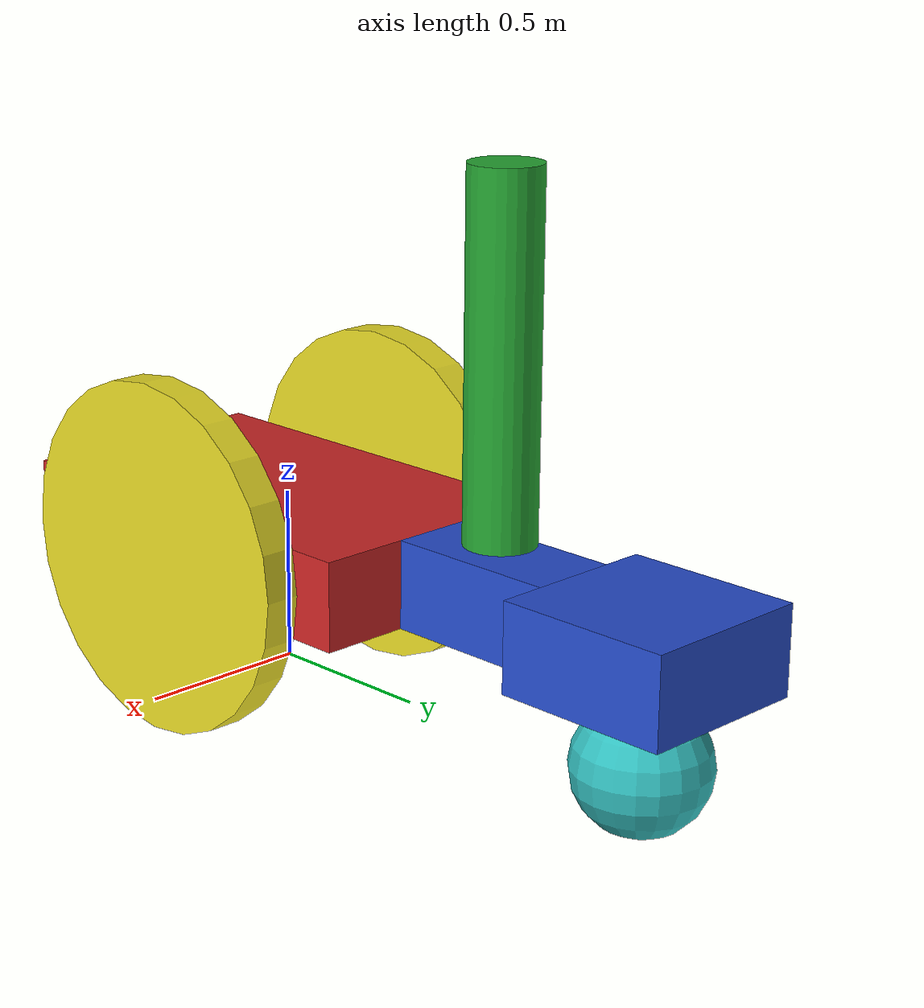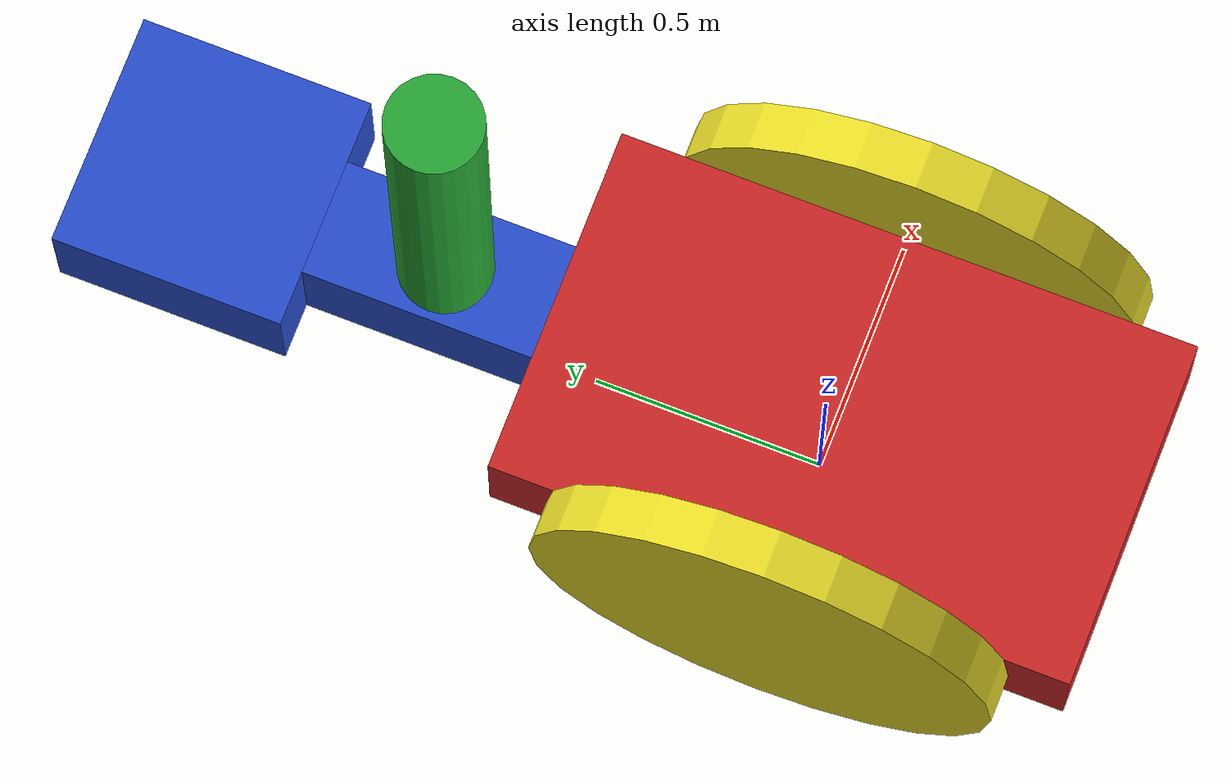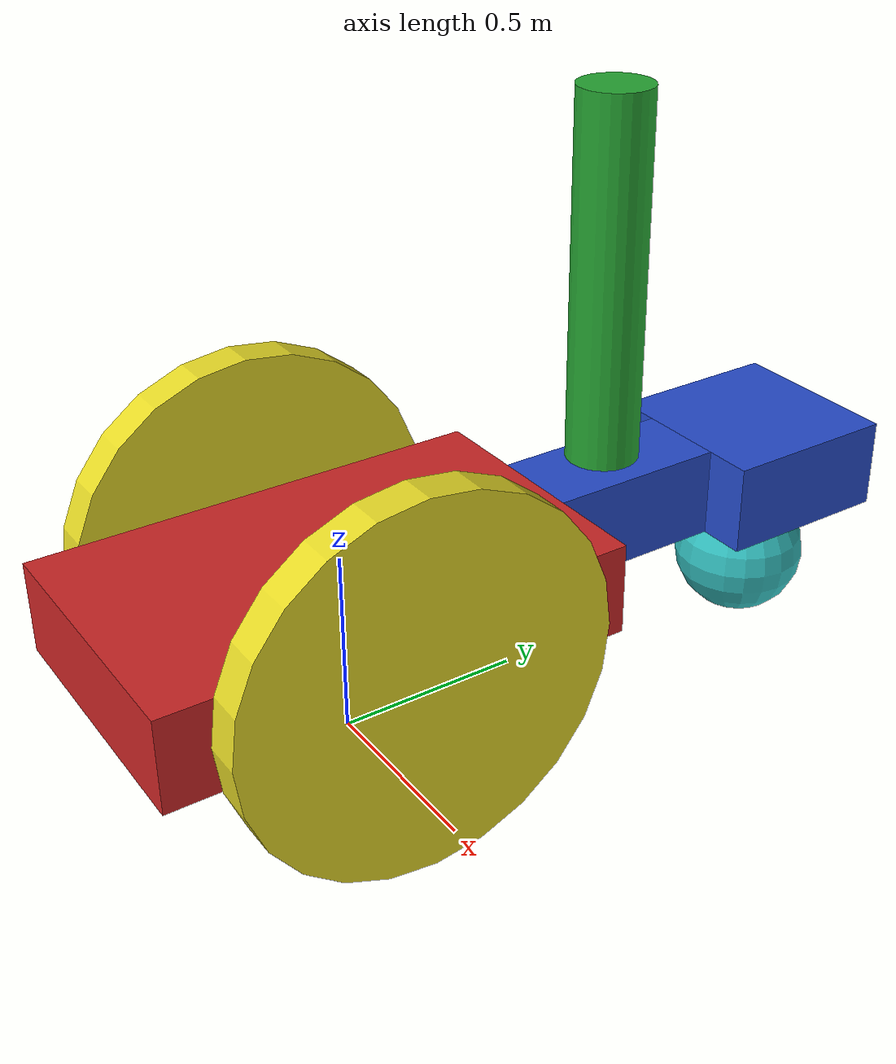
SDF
<?xml version='1.0'?>
<sdf version='1.6'>
  <model name='model'>
    <link name='link_1'>
      <inertial>
        <mass>1</mass>
        <inertia>
          <ixx>0.166667</ixx>
          <ixy>0</ixy>
          <ixz>0</ixz>
          <iyy>0.166667</iyy>
          <iyz>0</iyz>
          <izz>0.166667</izz>
        </inertia>
        <pose frame=''>0 0 0 0 -0 0</pose>
      </inertial>
      <pose frame=''>0.002679 -0.035833 0.401131 0 -0 0</pose>
      <gravity>1</gravity>
      <self_collide>0</self_collide>
      <kinematic>0</kinematic>
      <enable_wind>0</enable_wind>
      <visual name='visual'>
        <pose frame=''>0 0 0 0 -0 0</pose>
        <geometry>
          <box>
            <size>0.75 1.25 0.25</size>
          </box>
        </geometry>
        <material>
          <script>
            <uri>file://media/materials/scripts/gazebo.material</uri>
            <name>Gazebo/Red</name>
          </script>
        </material>
        <transparency>0</transparency>
        <cast_shadows>1</cast_shadows>
      </visual>
      <collision name='collision'>
        <laser_retro>0</laser_retro>
        <max_contacts>10</max_contacts>
        <pose frame=''>0 0 0 0 -0 0</pose>
        <geometry>
          <box>
            <size>0.75 1.25 0.25</size>
          </box>
        </geometry>
        <surface>
          <friction>
            <ode>
              <mu>1</mu>
              <mu2>1</mu2>
              <fdir1>0 0 0</fdir1>
              <slip1>0</slip1>
              <slip2>0</slip2>
            </ode>
            <torsional>
              <coefficient>1</coefficient>
              <patch_radius>0</patch_radius>
              <surface_radius>0</surface_radius>
              <use_patch_radius>1</use_patch_radius>
              <ode>
                <slip>0</slip>
              </ode>
            </torsional>
          </friction>
          <bounce>
            <restitution_coefficient>0</restitution_coefficient>
            <threshold>1e+06</threshold>
          </bounce>
          <contact>
            <collide_without_contact>0</collide_without_contact>
            <collide_without_contact_bitmask>1</collide_without_contact_bitmask>
            <collide_bitmask>1</collide_bitmask>
            <ode>
              <soft_cfm>0</soft_cfm>
              <soft_erp>0.2</soft_erp>
              <kp>1e+13</kp>
              <kd>1</kd>
              <max_vel>0.01</max_vel>
              <min_depth>0</min_depth>
            </ode>
            <bullet>
              <split_impulse>1</split_impulse>
              <split_impulse_penetration_threshold>-0.01</split_impulse_penetration_threshold>
              <soft_cfm>0</soft_cfm>
              <soft_erp>0.2</soft_erp>
              <kp>1e+13</kp>
              <kd>1</kd>
            </bullet>
          </contact>
        </surface>
      </collision>
    </link>
    <link name='link_2_clone'>
      <inertial>
        <mass>1</mass>
        <inertia>
          <ixx>0.145833</ixx>
          <ixy>0</ixy>
          <ixz>0</ixz>
          <iyy>0.145833</iyy>
          <iyz>0</iyz>
          <izz>0.125</izz>
        </inertia>
        <pose frame=''>0 0 0 0 -0 0</pose>
      </inertial>
      <pose frame=''>-0.422418 -0.035833 0.401131 1.5707 0 1.5707</pose>
      <gravity>1</gravity>
      <self_collide>0</self_collide>
      <kinematic>0</kinematic>
      <enable_wind>0</enable_wind>
      <visual name='visual'>
        <pose frame=''>0 0 0 0 -0 0</pose>
        <geometry>
          <cylinder>
            <radius>0.5</radius>
            <length>0.1</length>
          </cylinder>
        </geometry>
        <material>
          <script>
            <uri>file://media/materials/scripts/gazebo.material</uri>
            <name>Gazebo/Yellow</name>
          </script>
        </material>
        <transparency>0</transparency>
        <cast_shadows>1</cast_shadows>
      </visual>
      <collision name='collision'>
        <laser_retro>0</laser_retro>
        <max_contacts>10</max_contacts>
        <pose frame=''>0 0 0 0 -0 0</pose>
        <geometry>
          <cylinder>
            <radius>0.5</radius>
            <length>0.1</length>
          </cylinder>
        </geometry>
        <surface>
          <friction>
            <ode>
              <mu>1</mu>
              <mu2>1</mu2>
              <fdir1>0 0 0</fdir1>
              <slip1>0</slip1>
              <slip2>0</slip2>
            </ode>
            <torsional>
              <coefficient>1</coefficient>
              <patch_radius>0</patch_radius>
              <surface_radius>0</surface_radius>
              <use_patch_radius>1</use_patch_radius>
              <ode>
                <slip>0</slip>
              </ode>
            </torsional>
          </friction>
          <bounce>
            <restitution_coefficient>0</restitution_coefficient>
            <threshold>1e+06</threshold>
          </bounce>
          <contact>
            <collide_without_contact>0</collide_without_contact>
            <collide_without_contact_bitmask>1</collide_without_contact_bitmask>
            <collide_bitmask>1</collide_bitmask>
            <ode>
              <soft_cfm>0</soft_cfm>
              <soft_erp>0.2</soft_erp>
              <kp>1e+13</kp>
              <kd>1</kd>
              <max_vel>0.01</max_vel>
              <min_depth>0</min_depth>
            </ode>
            <bullet>
              <split_impulse>1</split_impulse>
              <split_impulse_penetration_threshold>-0.01</split_impulse_penetration_threshold>
              <soft_cfm>0</soft_cfm>
              <soft_erp>0.2</soft_erp>
              <kp>1e+13</kp>
              <kd>1</kd>
            </bullet>
          </contact>
        </surface>
      </collision>
    </link>
    <link name='link_2_clone_clone'>
      <inertial>
        <mass>1</mass>
        <inertia>
          <ixx>0.145833</ixx>
          <ixy>0</ixy>
          <ixz>0</ixz>
          <iyy>0.145833</iyy>
          <iyz>0</iyz>
          <izz>0.125</izz>
        </inertia>
        <pose frame=''>0 0 0 0 -0 0</pose>
      </inertial>
      <pose frame=''>0.427775 -0.035833 0.401131 1.5707 0 1.5707</pose>
      <gravity>1</gravity>
      <self_collide>0</self_collide>
      <kinematic>0</kinematic>
      <enable_wind>0</enable_wind>
      <visual name='visual'>
        <pose frame=''>0 0 0 0 -0 0</pose>
        <geometry>
          <cylinder>
            <radius>0.5</radius>
            <length>0.1</length>
          </cylinder>
        </geometry>
        <material>
          <script>
            <uri>file://media/materials/scripts/gazebo.material</uri>
            <name>Gazebo/Yellow</name>
          </script>
        </material>
        <transparency>0</transparency>
        <cast_shadows>1</cast_shadows>
      </visual>
      <collision name='collision'>
        <laser_retro>0</laser_retro>
        <max_contacts>10</max_contacts>
        <pose frame=''>0 0 0 0 -0 0</pose>
        <geometry>
          <cylinder>
            <radius>0.5</radius>
            <length>0.1</length>
          </cylinder>
        </geometry>
        <surface>
          <friction>
            <ode>
              <mu>1</mu>
              <mu2>1</mu2>
              <fdir1>0 0 0</fdir1>
              <slip1>0</slip1>
              <slip2>0</slip2>
            </ode>
            <torsional>
              <coefficient>1</coefficient>
              <patch_radius>0</patch_radius>
              <surface_radius>0</surface_radius>
              <use_patch_radius>1</use_patch_radius>
              <ode>
                <slip>0</slip>
              </ode>
            </torsional>
          </friction>
          <bounce>
            <restitution_coefficient>0</restitution_coefficient>
            <threshold>1e+06</threshold>
          </bounce>
          <contact>
            <collide_without_contact>0</collide_without_contact>
            <collide_without_contact_bitmask>1</collide_without_contact_bitmask>
            <collide_bitmask>1</collide_bitmask>
            <ode>
              <soft_cfm>0</soft_cfm>
              <soft_erp>0.2</soft_erp>
              <kp>1e+13</kp>
              <kd>1</kd>
              <max_vel>0.01</max_vel>
              <min_depth>0</min_depth>
            </ode>
            <bullet>
              <split_impulse>1</split_impulse>
              <split_impulse_penetration_threshold>-0.01</split_impulse_penetration_threshold>
              <soft_cfm>0</soft_cfm>
              <soft_erp>0.2</soft_erp>
              <kp>1e+13</kp>
              <kd>1</kd>
            </bullet>
          </contact>
        </surface>
      </collision>
    </link>
    <link name='link_3'>
      <inertial>
        <mass>1</mass>
        <inertia>
          <ixx>0.166667</ixx>
          <ixy>0</ixy>
          <ixz>0</ixz>
          <iyy>0.166667</iyy>
          <iyz>0</iyz>
          <izz>0.166667</izz>
        </inertia>
        <pose frame=''>0 0 0 0 -0 0</pose>
      </inertial>
      <pose frame=''>-0.004821 0.839167 0.401131 0 -0 0</pose>
      <gravity>1</gravity>
      <self_collide>0</self_collide>
      <kinematic>0</kinematic>
      <enable_wind>0</enable_wind>
      <visual name='visual'>
        <pose frame=''>0 0 0 0 -0 0</pose>
        <geometry>
          <box>
            <size>0.25 0.5 0.25</size>
          </box>
        </geometry>
        <material>
          <script>
            <uri>file://media/materials/scripts/gazebo.material</uri>
            <name>Gazebo/Blue</name>
          </script>
        </material>
        <transparency>0</transparency>
        <cast_shadows>1</cast_shadows>
      </visual>
      <collision name='collision'>
        <laser_retro>0</laser_retro>
        <max_contacts>10</max_contacts>
        <pose frame=''>0 0 0 0 -0 0</pose>
        <geometry>
          <box>
            <size>0.25 0.5 0.25</size>
          </box>
        </geometry>
        <surface>
          <friction>
            <ode>
              <mu>1</mu>
              <mu2>1</mu2>
              <fdir1>0 0 0</fdir1>
              <slip1>0</slip1>
              <slip2>0</slip2>
            </ode>
            <torsional>
              <coefficient>1</coefficient>
              <patch_radius>0</patch_radius>
              <surface_radius>0</surface_radius>
              <use_patch_radius>1</use_patch_radius>
              <ode>
                <slip>0</slip>
              </ode>
            </torsional>
          </friction>
          <bounce>
            <restitution_coefficient>0</restitution_coefficient>
            <threshold>1e+06</threshold>
          </bounce>
          <contact>
            <collide_without_contact>0</collide_without_contact>
            <collide_without_contact_bitmask>1</collide_without_contact_bitmask>
            <collide_bitmask>1</collide_bitmask>
            <ode>
              <soft_cfm>0</soft_cfm>
              <soft_erp>0.2</soft_erp>
              <kp>1e+13</kp>
              <kd>1</kd>
              <max_vel>0.01</max_vel>
              <min_depth>0</min_depth>
            </ode>
            <bullet>
              <split_impulse>1</split_impulse>
              <split_impulse_penetration_threshold>-0.01</split_impulse_penetration_threshold>
              <soft_cfm>0</soft_cfm>
              <soft_erp>0.2</soft_erp>
              <kp>1e+13</kp>
              <kd>1</kd>
            </bullet>
          </contact>
        </surface>
      </collision>
    </link>
    <link name='link_3_clone'>
      <inertial>
        <mass>1</mass>
        <inertia>
          <ixx>0.166667</ixx>
          <ixy>0</ixy>
          <ixz>0</ixz>
          <iyy>0.166667</iyy>
          <iyz>0</iyz>
          <izz>0.166667</izz>
        </inertia>
        <pose frame=''>0 0 0 0 -0 0</pose>
      </inertial>
      <pose frame=''>0.002679 1.33917 0.401131 0 -0 0</pose>
      <gravity>1</gravity>
      <self_collide>0</self_collide>
      <kinematic>0</kinematic>
      <enable_wind>0</enable_wind>
      <visual name='visual'>
        <pose frame=''>0 0 0 0 -0 0</pose>
        <geometry>
          <box>
            <size>0.5 0.5 0.25</size>
          </box>
        </geometry>
        <material>
          <script>
            <uri>file://media/materials/scripts/gazebo.material</uri>
            <name>Gazebo/Blue</name>
          </script>
        </material>
        <transparency>0</transparency>
        <cast_shadows>1</cast_shadows>
      </visual>
      <collision name='collision'>
        <laser_retro>0</laser_retro>
        <max_contacts>10</max_contacts>
        <pose frame=''>0 0 0 0 -0 0</pose>
        <geometry>
          <box>
            <size>0.5 0.5 0.25</size>
          </box>
        </geometry>
        <surface>
          <friction>
            <ode>
              <mu>1</mu>
              <mu2>1</mu2>
              <fdir1>0 0 0</fdir1>
              <slip1>0</slip1>
              <slip2>0</slip2>
            </ode>
            <torsional>
              <coefficient>1</coefficient>
              <patch_radius>0</patch_radius>
              <surface_radius>0</surface_radius>
              <use_patch_radius>1</use_patch_radius>
              <ode>
                <slip>0</slip>
              </ode>
            </torsional>
          </friction>
          <bounce>
            <restitution_coefficient>0</restitution_coefficient>
            <threshold>1e+06</threshold>
          </bounce>
          <contact>
            <collide_without_contact>0</collide_without_contact>
            <collide_without_contact_bitmask>1</collide_without_contact_bitmask>
            <collide_bitmask>1</collide_bitmask>
            <ode>
              <soft_cfm>0</soft_cfm>
              <soft_erp>0.2</soft_erp>
              <kp>1e+13</kp>
              <kd>1</kd>
              <max_vel>0.01</max_vel>
              <min_depth>0</min_depth>
            </ode>
            <bullet>
              <split_impulse>1</split_impulse>
              <split_impulse_penetration_threshold>-0.01</split_impulse_penetration_threshold>
              <soft_cfm>0</soft_cfm>
              <soft_erp>0.2</soft_erp>
              <kp>1e+13</kp>
              <kd>1</kd>
            </bullet>
          </contact>
        </surface>
      </collision>
    </link>
    <link name='link_4'>
      <inertial>
        <mass>1</mass>
        <inertia>
          <ixx>0.1</ixx>
          <ixy>0</ixy>
          <ixz>0</ixz>
          <iyy>0.1</iyy>
          <iyz>0</iyz>
          <izz>0.1</izz>
        </inertia>
        <pose frame=''>0 0 0 0 -0 0</pose>
      </inertial>
      <pose frame=''>0.002679 1.33917 0.088631 0 -0 0</pose>
      <gravity>1</gravity>
      <self_collide>0</self_collide>
      <kinematic>0</kinematic>
      <enable_wind>0</enable_wind>
      <visual name='visual'>
        <pose frame=''>0 0 0 0 -0 0</pose>
        <geometry>
          <sphere>
            <radius>0.1875</radius>
          </sphere>
        </geometry>
        <material>
          <script>
            <uri>file://media/materials/scripts/gazebo.material</uri>
            <name>Gazebo/Turquoise</name>
          </script>
        </material>
        <transparency>0</transparency>
        <cast_shadows>1</cast_shadows>
      </visual>
      <collision name='collision'>
        <laser_retro>0</laser_retro>
        <max_contacts>10</max_contacts>
        <pose frame=''>0 0 0 0 -0 0</pose>
        <geometry>
          <sphere>
            <radius>0.1875</radius>
          </sphere>
        </geometry>
        <surface>
          <friction>
            <ode>
              <mu>1</mu>
              <mu2>1</mu2>
              <fdir1>0 0 0</fdir1>
              <slip1>0</slip1>
              <slip2>0</slip2>
            </ode>
            <torsional>
              <coefficient>1</coefficient>
              <patch_radius>0</patch_radius>
              <surface_radius>0</surface_radius>
              <use_patch_radius>1</use_patch_radius>
              <ode>
                <slip>0</slip>
              </ode>
            </torsional>
          </friction>
          <bounce>
            <restitution_coefficient>0</restitution_coefficient>
            <threshold>1e+06</threshold>
          </bounce>
          <contact>
            <collide_without_contact>0</collide_without_contact>
            <collide_without_contact_bitmask>1</collide_without_contact_bitmask>
            <collide_bitmask>1</collide_bitmask>
            <ode>
              <soft_cfm>0</soft_cfm>
              <soft_erp>0.2</soft_erp>
              <kp>1e+13</kp>
              <kd>1</kd>
              <max_vel>0.01</max_vel>
              <min_depth>0</min_depth>
            </ode>
            <bullet>
              <split_impulse>1</split_impulse>
              <split_impulse_penetration_threshold>-0.01</split_impulse_penetration_threshold>
              <soft_cfm>0</soft_cfm>
              <soft_erp>0.2</soft_erp>
              <kp>1e+13</kp>
              <kd>1</kd>
            </bullet>
          </contact>
        </surface>
      </collision>
    </link>
    <link name='link_5'>
      <inertial>
        <mass>1</mass>
        <inertia>
          <ixx>0.145833</ixx>
          <ixy>0</ixy>
          <ixz>0</ixz>
          <iyy>0.145833</iyy>
          <iyz>0</iyz>
          <izz>0.125</izz>
        </inertia>
        <pose frame=''>0 0 0 0 -0 0</pose>
      </inertial>
      <pose frame=''>-0.017321 0.819167 1.04113 0 -0 0</pose>
      <gravity>1</gravity>
      <self_collide>0</self_collide>
      <kinematic>0</kinematic>
      <enable_wind>0</enable_wind>
      <visual name='visual'>
        <pose frame=''>0 0 0 0 -0 0</pose>
        <geometry>
          <cylinder>
            <radius>0.1</radius>
            <length>1</length>
          </cylinder>
        </geometry>
        <material>
          <script>
            <uri>file://media/materials/scripts/gazebo.material</uri>
            <name>Gazebo/Green</name>
          </script>
        </material>
        <transparency>0</transparency>
        <cast_shadows>1</cast_shadows>
      </visual>
      <collision name='collision'>
        <laser_retro>0</laser_retro>
        <max_contacts>10</max_contacts>
        <pose frame=''>0 0 0 0 -0 0</pose>
        <geometry>
          <cylinder>
            <radius>0.1</radius>
            <length>1</length>
          </cylinder>
        </geometry>
        <surface>
          <friction>
            <ode>
              <mu>1</mu>
              <mu2>1</mu2>
              <fdir1>0 0 0</fdir1>
              <slip1>0</slip1>
              <slip2>0</slip2>
            </ode>
            <torsional>
              <coefficient>1</coefficient>
              <patch_radius>0</patch_radius>
              <surface_radius>0</surface_radius>
              <use_patch_radius>1</use_patch_radius>
              <ode>
                <slip>0</slip>
              </ode>
            </torsional>
          </friction>
          <bounce>
            <restitution_coefficient>0</restitution_coefficient>
            <threshold>1e+06</threshold>
          </bounce>
          <contact>
            <collide_without_contact>0</collide_without_contact>
            <collide_without_contact_bitmask>1</collide_without_contact_bitmask>
            <collide_bitmask>1</collide_bitmask>
            <ode>
              <soft_cfm>0</soft_cfm>
              <soft_erp>0.2</soft_erp>
              <kp>1e+13</kp>
              <kd>1</kd>
              <max_vel>0.01</max_vel>
              <min_depth>0</min_depth>
            </ode>
            <bullet>
              <split_impulse>1</split_impulse>
              <split_impulse_penetration_threshold>-0.01</split_impulse_penetration_threshold>
              <soft_cfm>0</soft_cfm>
              <soft_erp>0.2</soft_erp>
              <kp>1e+13</kp>
              <kd>1</kd>
            </bullet>
          </contact>
        </surface>
      </collision>
    </link>
    <joint name='link_1_JOINT_0' type='revolute'>
      <parent>link_1</parent>
      <child>link_2_clone_clone</child>
      <pose frame=''>0 0 0 0 -0 0</pose>
      <axis>
        <xyz>0 0 1</xyz>
        <use_parent_model_frame>0</use_parent_model_frame>
        <limit>
          <lower>-1.79769e+308</lower>
          <upper>1.79769e+308</upper>
          <effort>-1</effort>
          <velocity>-1</velocity>
        </limit>
        <dynamics>
          <spring_reference>0</spring_reference>
          <spring_stiffness>0</spring_stiffness>
          <damping>0</damping>
        </dynamics>
      </axis>
      <physics>
        <ode>
          <limit>
            <cfm>0</cfm>
            <erp>0.2</erp>
          </limit>
          <suspension>
            <cfm>0</cfm>
            <erp>0.2</erp>
          </suspension>
        </ode>
      </physics>
    </joint>
    <joint name='link_1_JOINT_1' type='revolute'>
      <parent>link_1</parent>
      <child>link_2_clone</child>
      <pose frame=''>0 0 0 0 -0 0</pose>
      <axis>
        <xyz>0 0 1</xyz>
        <use_parent_model_frame>0</use_parent_model_frame>
        <limit>
          <lower>-1.79769e+308</lower>
          <upper>1.79769e+308</upper>
          <effort>-1</effort>
          <velocity>-1</velocity>
        </limit>
        <dynamics>
          <spring_reference>0</spring_reference>
          <spring_stiffness>0</spring_stiffness>
          <damping>0</damping>
        </dynamics>
      </axis>
      <physics>
        <ode>
          <limit>
            <cfm>0</cfm>
            <erp>0.2</erp>
          </limit>
          <suspension>
            <cfm>0</cfm>
            <erp>0.2</erp>
          </suspension>
        </ode>
      </physics>
    </joint>
    <joint name='link_1_JOINT_3' type='fixed'>
      <parent>link_1</parent>
      <child>link_3</child>
      <pose frame=''>0 0 0 0 -0 0</pose>
      <physics>
        <ode>
          <limit>
            <cfm>0</cfm>
            <erp>0.2</erp>
          </limit>
          <suspension>
            <cfm>0</cfm>
            <erp>0.2</erp>
          </suspension>
        </ode>
      </physics>
    </joint>
    <joint name='link_3_JOINT_4' type='fixed'>
      <parent>link_3</parent>
      <child>link_3_clone</child>
      <pose frame=''>0 0 0 0 -0 0</pose>
      <physics>
        <ode>
          <limit>
            <cfm>0</cfm>
            <erp>0.2</erp>
          </limit>
          <suspension>
            <cfm>0</cfm>
            <erp>0.2</erp>
          </suspension>
        </ode>
      </physics>
    </joint>
    <joint name='link_3_JOINT_6' type='fixed'>
      <parent>link_3</parent>
      <child>link_5</child>
      <pose frame=''>0 0 0 0 -0 0</pose>
      <physics>
        <ode>
          <limit>
            <cfm>0</cfm>
            <erp>0.2</erp>
          </limit>
          <suspension>
            <cfm>0</cfm>
            <erp>0.2</erp>
          </suspension>
        </ode>
      </physics>
    </joint>
    <joint name='link_3_clone_JOINT_5' type='ball'>
      <parent>link_3_clone</parent>
      <child>link_4</child>
      <pose frame=''>0 0 0 0 -0 0</pose>
      <physics>
        <ode>
          <limit>
            <cfm>0</cfm>
            <erp>0.2</erp>
          </limit>
          <suspension>
            <cfm>0</cfm>
            <erp>0.2</erp>
          </suspension>
        </ode>
      </physics>
    </joint>
    <static>0</static>
    <allow_auto_disable>1</allow_auto_disable>
  </model>
</sdf>
